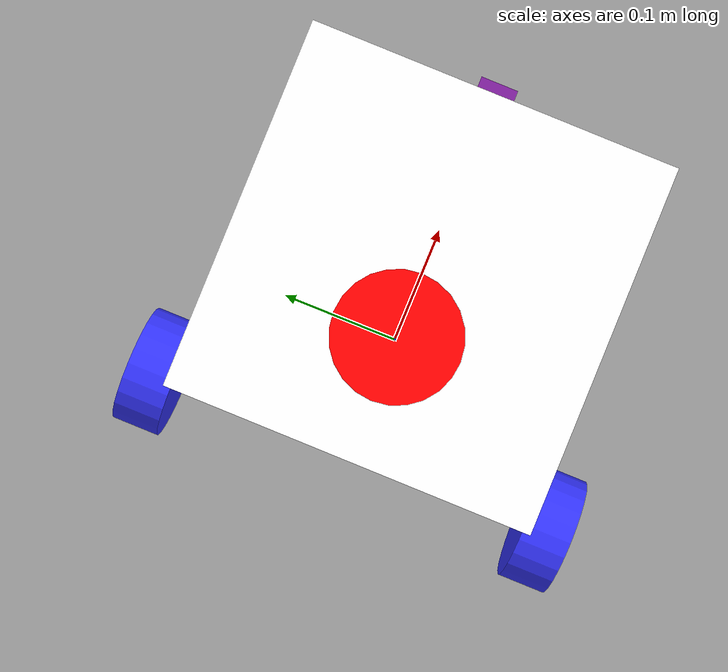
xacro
<?xml version="1.0"?>
<robot xmlns:xacro="http://www.ros.org/wiki/xacro"  name="robot">

    <xacro:include filename="robot_core.xacro" />

    <xacro:include filename="gazebo_control.xacro" />
    <xacro:include filename="camera.xacro" />
    <xacro:include filename="depth_camera.xacro" />
    <xacro:include filename="lidar.xacro" />
</robot>

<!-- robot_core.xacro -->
<robot xmlns:xacro="http://www.ros.org/wiki/xacro">

    <xacro:include filename="inertial_macros.xacro"/>

    <material name="white">
        <color rgba="1 1 1 1"/>
    </material>

    <material name="orange">
        <color rgba="1 0.3 0.1 1"/>
    </material>

    <material name="blue">
        <color rgba="0.2 0.2 1 1"/>
    </material>

    <material name="black">
        <color rgba="0 0 0 1"/>
    </material>

    <material name="red">
        <color rgba="1 0 0 1"/>
    </material>

    <material name="purple" >
        <color rgba="0.49411764705882355 0.11764705882352941 0.611764705882353 1.0" />
    </material>

<!-- Base Link -->
    <link name="base_link">
    </link>

    <joint name="chassis_joint" type="fixed">
        <parent link="base_link"/>
        <child link="chassis"/>
        <origin xyz="-0.1 0 0"/>
    </joint>

<!--base_footprint_link-->
    <joint name="base_footprint_joint" type="fixed">
        <parent link="base_link"/>
        <child link="base_footprint"/>
        <origin xyz = "0 0 0" rpy="0 0 0"/>
    </joint>

    <link name="base_footprint">
    </link>

<!-- Chassis Link-->
    <link name="chassis">
        <visual>
            <origin xyz="0.15 0 0.075"/>
            <geometry>
                <box size="0.3 0.3 0.15"/>
            </geometry>
            <material name="white"/>
        </visual>
        <collision>
            <origin xyz="0.15 0 0.075"/>
            <geometry>
                <box size="0.3 0.3 0.15"/>
            </geometry>
        </collision>
        <xacro:inertial_box mass="0.5" x="0.3" y="0.3" z="0.15">
            <origin xyz="0.15 0 0.075" rpy="0 0 0"/>
        </xacro:inertial_box>
    </link>

<!--Left Wheel Joint-->
    <joint name="left_wheel_joint" type="continuous">
        <parent link="chassis"/>
        <child link="left_wheel"/>
        <origin xyz="0 0.175 0" rpy="-${pi/2} 0 0"/>
        <axis xyz="0 0 1"/>
    </joint>

    <link name="left_wheel">
        <visual>
            <geometry>
                <cylinder radius="0.05" length="0.04"/>
            </geometry>
            <material name="blue"/>
        </visual>
        <collision>
            <geometry>
                <cylinder radius="0.05" length="0.04"/>
            </geometry>
        </collision>
        <xacro:inertial_cylinder mass="0.1" length="0.04" radius="0.05">
            <origin xyz="0 0 0" rpy="0 0 0"/>
        </xacro:inertial_cylinder>
    </link>

<!--Right Wheel-->
    <joint name="right_wheel_joint" type="continuous">
        <parent link="chassis"/>
        <child link="right_wheel"/>
        <origin xyz="0 -0.175 0" rpy="${pi/2} 0 0"/>
        <axis xyz="0 0 -1"/>
    </joint>

    <link name="right_wheel">
        <visual>
            <geometry>
                <cylinder radius="0.05" length="0.04"/>
            </geometry>
            <material name="blue"/>
        </visual>
        <collision>
            <geometry>
                <cylinder radius="0.05" length="0.04"/>
            </geometry>
        </collision>
        <xacro:inertial_cylinder mass="0.1" length="0.04" radius="0.05">
            <origin xyz="0 0 0" rpy="0 0 0"/>
        </xacro:inertial_cylinder>
    </link>

    <joint name="caster_wheel_joint" type="fixed">
        <parent link="chassis"/>
        <child link="caster_wheel"/>
        <origin xyz="0.24 0 0"/>
    </joint>

<!--Caster Wheel-->
    <link name="caster_wheel">
        <visual>
            <geometry>
                <sphere radius="0.05"/>
            </geometry>
            <material name="black"/>
        </visual>
        <collision>
            <geometry>
                <sphere radius="0.04"/>
            </geometry>
        </collision>
        <xacro:inertial_sphere mass="0.1" radius="0.05">
            <origin xyz="0 0 0" rpy="0 0 0"/>
        </xacro:inertial_sphere>
    </link>

    <gazebo reference="caster_wheel">
        <material>Gazebo/Black</material>
        <mu1 value="0.001"/>
        <mu2 value="0.001"/>

    </gazebo>

    <gazebo>
        <plugin filename="gz-sim-joint-state-publisher-system" name="gz::sim::systems::JointStatePublisher">
        <topic>joint_states</topic>
        <joint_name>left_wheel_joint</joint_name>
        <joint_name>right_wheel_joint</joint_name>
        </plugin>
    </gazebo>

</robot>

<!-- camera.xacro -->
<robot xmlns:xacro="http://www.ros.org/wiki/xacro" >

    <joint name="camera_joint" type="fixed">
        <parent link="chassis"/>
        <child link ="camera_link"/>
        <origin xyz="0.305 0 0.08" rpy="0 0 0"/>
    </joint>

    <link name="camera_link">
        <visual>
            <geometry>
                <box size="0.01 0.03 0.03"/>
            </geometry>
            <material name="red"/>
        </visual>
        <inertial>
            <mass value="0.01"/>
            <inertia ixx="0.00001" ixy="0" ixz="0" iyy="0.00001" iyz="0" izz="0.00001"/>
        </inertial>
    </link>

    <joint name="camera_optical_joint" type="fixed">
        <parent link="camera_link"/>
        <child link ="camera_optical_link"/>
        <origin xyz="0 0 0" rpy="${-pi/2} 0 ${-pi/2}"/>
    </joint>

    <link name="camera_optical_link"></link>

<gazebo reference="camera_link">
        <material>Gazebo/Red</material>

        <sensor name="camera" type="camera">
            <pose> 0 0 0 0 0 0 </pose>
            <visualize>true</visualize>
            <update_rate>10</update_rate>

            <topic>camera/image_raw</topic>

            <gz_frame_id>camera_optical_link</gz_frame_id>

            <camera>
                <horizontal_fov>1.089</horizontal_fov>
                <image>
                    <format>R8G8B8</format>
                    <width>1280</width>
                    <height>720</height>
                </image>
                <clip>
                    <near>0.05</near>
                    <far>8.0</far>
                </clip>
            </camera>
            </sensor>
    </gazebo>
</robot>

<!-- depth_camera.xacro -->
<robot xmlns:xacro="http://www.ros.org/wiki/xacro" >

    <joint name="depth_joint" type="fixed">
        <parent link="chassis"/>
        <child link ="depth_link"/>
        <origin xyz="0.305 0 0.125" rpy="0 0 0"/>
    </joint>

    <link name="depth_link">
        <visual>
            <geometry>
                <box size="0.01 0.03 0.03"/>
            </geometry>
            <material name="purple"/>
        </visual>
        <inertial>
            <mass value="0.01"/>
            <inertia ixx="0.00001" ixy="0" ixz="0" iyy="0.00001" iyz="0" izz="0.00001"/>
        </inertial>
    </link>

    <joint name="depth_optical_joint" type="fixed">
        <parent link="depth_link"/>
        <child link ="depth_optical_link"/>
        <origin xyz="0 0 0" rpy="${-pi/2} 0 ${-pi/2}"/>
    </joint>

    <link name="depth_optical_link"></link>

<gazebo reference="depth_link">

        <sensor name="dcamera" type="depth">
            <pose> 0 0 0 0 0 0 </pose>
            <visualize>true</visualize>
            <update_rate>10</update_rate>

            <topic>camera/depth/image_raw</topic>

            <gz_frame_id>depth_optical_link</gz_frame_id>
            <min_depth>0.1</min_depth>
            <max_depth>100.0</max_depth>

            <camera>
                <horizontal_fov>1.089</horizontal_fov>
                <image>
                    <format>R8G8B8</format>
                    <width>1280</width>
                    <height>720</height>
                </image>
                <clip>
                    <near>0.05</near>
                    <far>8.0</far>
                </clip>
            </camera>
            </sensor>
    </gazebo>
</robot>

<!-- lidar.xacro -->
<robot xmlns:xacro="http://www.ros.org/wiki/xacro" >

    <joint name="laser_joint" type="fixed">
        <parent link="chassis"/>
        <child link ="laser_frame"/>
        <origin xyz="0.1 0 0.175" rpy="0 0 0"/>
    </joint>

    <link name="laser_frame">
        <visual>
            <geometry>
                <cylinder radius="0.05" length="0.04"/>
            </geometry>
            <material name="red"/>
        </visual>
        <collision>
            <geometry>
                <cylinder radius="0.05" length="0.04"/>
            </geometry>
        </collision>
        <xacro:inertial_cylinder mass="0.1" length="0.04" radius="0.05">
            <origin xyz="0 0 0" rpy="0 0 0"/>
        </xacro:inertial_cylinder>
    </link>

    <gazebo reference="laser_frame">

        <sensor name="laser" type="gpu_lidar">
            <pose> 0 0 0 0 0 0 </pose>
            <visualize>true</visualize>
            <update_rate>10</update_rate>

            <topic>scan</topic>
            <update_rate>2</update_rate>

            <gz_frame_id>laser_frame</gz_frame_id>

            <lidar>
                <scan>
                    <horizontal>
                        <samples>720</samples>
                        <resolution>1</resolution>
                        <min_angle>-3.14</min_angle>
                        <max_angle>3.14</max_angle>
                    </horizontal>
                </scan>
                <range>
                    <min>0.01</min>
                    <max>12.0</max>
                    <resolution>0.01</resolution>
                </range>
            </lidar>
        <always_on>1</always_on>
        <visualize>1</visualize>
        </sensor>
    </gazebo>
</robot>
